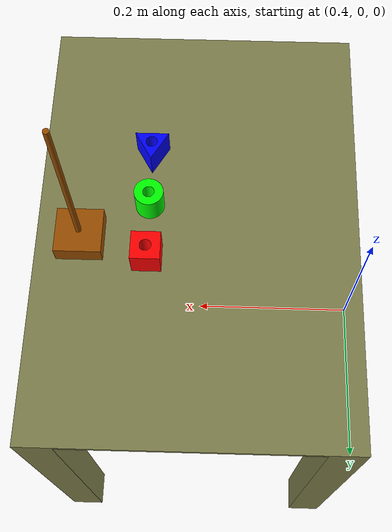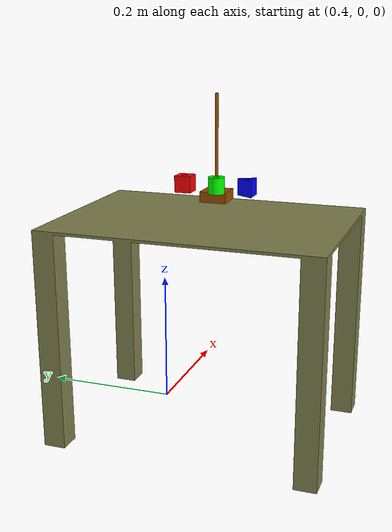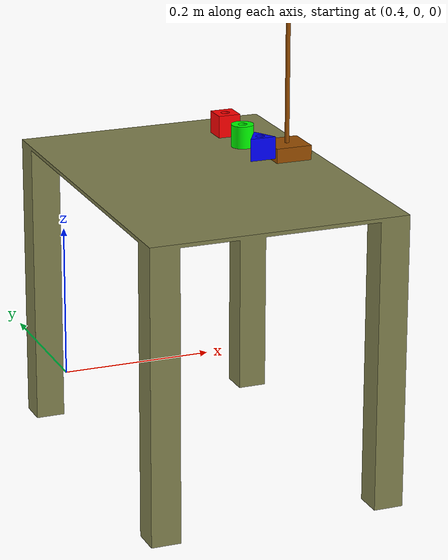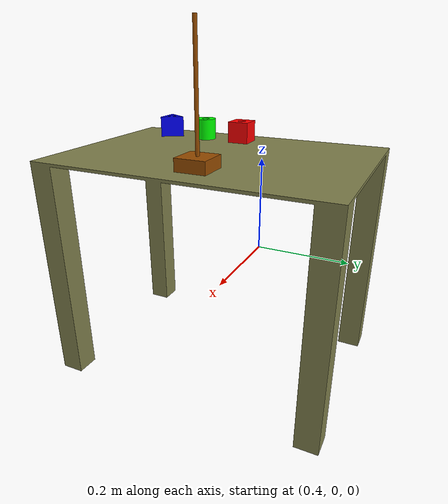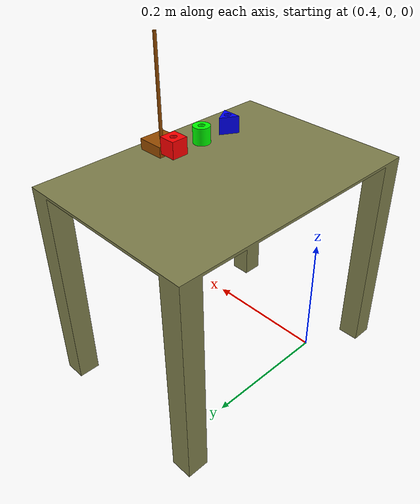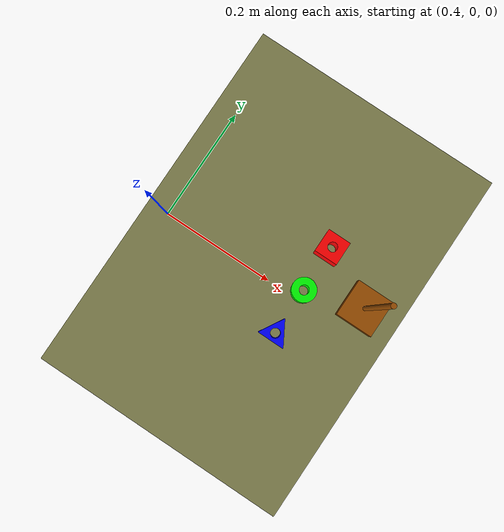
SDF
<?xml version='1.0'?>
<sdf version='1.6'>
<model name ='box'>
  <self_collide>true</self_collide>
  <pose>0 0 0 0 0 0</pose>

  <joint name="peg_joint" type="fixed">
    <parent>desk_link</parent>
    <child>peg_link</child>
  </joint>

  <link name='peg_link'>
    <pose relative_to='world'>0.7 0 0.255 0 0 0</pose>
    <inertial>
      <pose>0 0 0 0 -0 0</pose>
      <mass>1</mass>
      <inertia>
        <ixx>3.02042e-05</ixx>
        <ixy>-6.35247e-08</ixy>
        <ixz>-2.34242e-10</ixz>
        <iyy>0.000198778</iyy>
        <iyz>-1.0909e-10</iyz>
        <izz>0.000200818</izz>
      </inertia>
    </inertial>

    <visual name='peg_cylinder_link_visual'>
      <pose>0.025 0.025 0.1 0 0 0</pose>
      <geometry>
        <cylinder>
          <radius>0.003</radius>
          <length>0.2</length>
        </cylinder>
      </geometry>
      <material>
        <ambient>0.6 0.3 0.0 1</ambient>
      </material>
    </visual>

    <visual name='peg_box_link_visual'>
      <pose>0.025 0.025 0.01 0 0 0</pose>
      <geometry>
        <box>
          <size>0.05 0.05 0.02</size>
        </box>
      </geometry>
      <material>
        <ambient>0.6 0.3 0.0 1</ambient>
      </material>
    </visual>

    <collision name='peg_cylinder_link_collision'>
      <pose>0.025 0.025 0.1 0 0 0</pose>
      <geometry>
        <cylinder>
          <radius>0.003</radius>
          <length>0.2</length>
        </cylinder>
      </geometry>
    </collision>

    <collision name='peg_box_link_collision'>
      <pose>0.025 0.025 0.01 0 0 0</pose>
      <geometry>
        <box>
          <size>0.05 0.05 0.02</size>
        </box>
      </geometry>
    </collision>

  </link>

  <link name='square_link'>
    <pose relative_to='world'>0.65 0.06 0.3 0 0 0</pose>
    <inertial>
      <pose>0 0 0 0 -0 0</pose>
      <mass>0.017</mass>
      <inertia>
        <ixx>1e-05</ixx>
        <ixy>1e-10</ixy>
        <ixz>1e-10</ixz>
        <iyy>1e-05</iyy>
        <iyz>1e-10</iyz>
        <izz>1e-05</izz>
      </inertia>
    </inertial>

    <collision name='square_link_collision'>
      <pose>0 0 0 0 0 0</pose>
      <geometry>
        <mesh>
          <scale>1 1 1</scale>
          <uri>model://experiment_description/meshes/stl/Square.stl</uri>
        </mesh>
      </geometry>

      <surface>
        <!--NOTE: Used dynamic friction of clean dry plastic cube on a plastic surface
        (i.e. Polyethylene) see https://www.engineeringtoolbox.com/friction-coefficients-d_778.html
        -->
        <friction>
          <ode>
            <mu>0.7</mu>
            <mu2>0.7</mu2>
          </ode>
        </friction>
        <contact>
          <collide_bitmask>1</collide_bitmask>
          <ode>
            <kp>1e+06</kp>
            <kd>1e+06</kd>
            <max_vel>1</max_vel>
            <min_depth>0.002</min_depth>
          </ode>
          <bullet>
            <kp>1e+06</kp>
            <kd>1e+06</kd>
          </bullet>
        </contact>
      </surface>
    </collision>

    <visual name='square_link_visual'>
      <pose>0 0 0 0 0 0</pose>
      <geometry>
        <mesh>
          <scale>1 1 1</scale>
          <uri>model://experiment_description/meshes/stl/Square.stl</uri>
        </mesh>
      </geometry>
      <material>
        <ambient>1 0 0 1</ambient>
      </material>
    </visual>
  </link>

  <link name='sphere_link'>
    <pose relative_to='world'>0.65 0.0 0.3 0 0 0</pose>
    <inertial>
      <pose>0 0 0 0 -0 0</pose>
      <mass>0.017</mass>
      <inertia>
        <ixx>1e-05</ixx>
        <ixy>1e-10</ixy>
        <ixz>1e-10</ixz>
        <iyy>1e-05</iyy>
        <iyz>1e-10</iyz>
        <izz>1e-05</izz>
      </inertia>
    </inertial>

    <collision name='sphere_link_collision'>
      <pose>0 0 0 0 0 0</pose>
      <geometry>
        <mesh>
          <scale>1 1 1</scale>
          <uri>model://experiment_description/meshes/stl/Sphere.stl</uri>
        </mesh>
      </geometry>
    </collision>

    <visual name='sphere_link_visual'>
      <pose>0 0 0 0 0 0</pose>
      <geometry>
        <mesh>
          <scale>1 1 1</scale>
          <uri>model://experiment_description/meshes/stl/Sphere.stl</uri>
        </mesh>
      </geometry>
      <material>
        <ambient>0 1 0 1</ambient>
      </material>
    </visual>
  </link>

  <link name='triange_link'>
    <pose relative_to='world'>0.65 -0.06 0.3 0 0 0</pose>
    <inertial>
      <pose relative_to='triange_link'>0 0 0 0 -0 0</pose>
      <mass>0.017</mass>
      <inertia>
        <ixx>1e-05</ixx>
        <ixy>1e-10</ixy>
        <ixz>1e-10</ixz>
        <iyy>1e-05</iyy>
        <iyz>1e-10</iyz>
        <izz>1e-05</izz>
      </inertia>
    </inertial>

    <collision name='triange_link_collision'>
      <pose>0 0 0 0 0 0</pose>
      <geometry>
        <mesh>
          <scale>1 1 1</scale>
          <uri>model://experiment_description/meshes/stl/Triangle.stl</uri>
        </mesh>
      </geometry>
    </collision>

    <visual name='triange_link_visual'>
      <pose>0 0 0 0 0 0</pose>
      <geometry>
        <mesh>
          <scale>1 1 1</scale>
          <uri>model://experiment_description/meshes/stl/Triangle.stl</uri>
        </mesh>
      </geometry>
      <material>
        <ambient>0 0 1 1</ambient>
      </material>
    </visual>
  </link>

    <joint name="desk_joint" type="fixed">
      <parent>world</parent>
      <child>desk_link</child>
    </joint>

  <link name='desk_link'>
    <pose relative_to='world'>0.6 0 0.25 0 0 0</pose>

    <collision name ='desk_link_collision'>
      <pose>0 0 -0.0025 0 0 0</pose>
      <geometry>
        <box>
          <size>0.35 0.5 0.005</size>
        </box>
      </geometry>
    </collision>

    <visual name='desk_link_visual'>
      <pose>0 0 0 0 0 0</pose>
      <geometry>
        <mesh>
          <scale>1 1 1</scale>
          <uri>model://experiment_description/meshes/stl/Desk.stl</uri>
        </mesh>
      </geometry>
      <material>
        <ambient>0.5 0.5 0.3 1</ambient>
      </material>
    </visual>
  </link>

</model>

</sdf>
